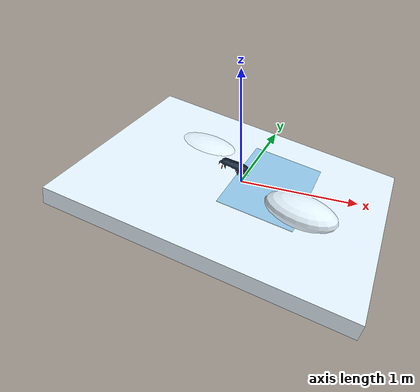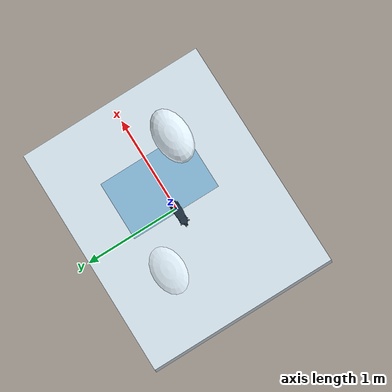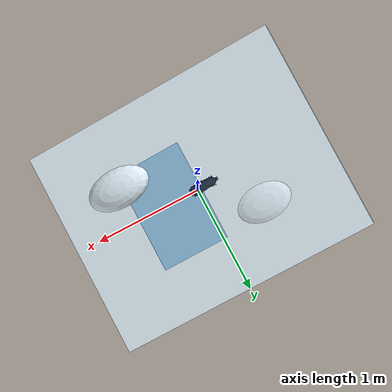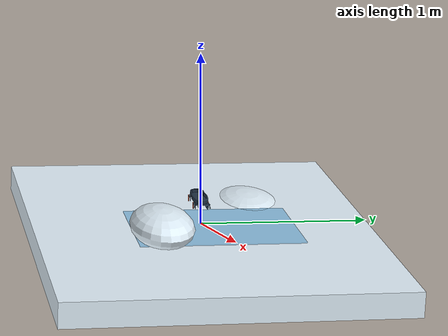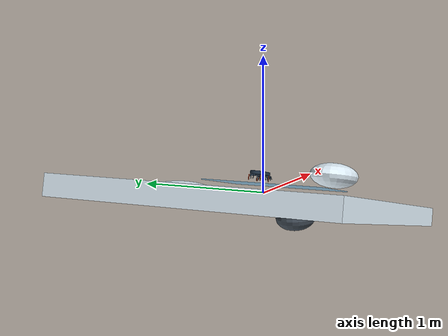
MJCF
<mujoco model="hackathon_everest_snow_slope_viewer">
  <compiler angle="degree" meshdir="../assets/crampon" autolimits="true"/>
  <option timestep="0.00025" gravity="0 0 -9.81"/>
  <visual>
    <headlight diffuse="0.75 0.82 0.92" ambient="0.28 0.30 0.38" specular="0.25 0.25 0.25"/>
    <rgba haze="0.72 0.83 0.94 1"/>
    <global offwidth="1280" offheight="720"/>
  </visual>
  <default>
    <geom friction="0.04 0.003 0.0001"/>
  </default>
  <asset>
    <material name="snow" rgba="0.90 0.96 1.00 1" specular="0.10" shininess="0.15"/>
    <material name="ice" rgba="0.48 0.74 0.91 1" specular="0.65" shininess="0.75"/>
    <material name="crampon_metal" rgba="0.13 0.20 0.27 1" metallic="0.8" roughness="0.25"/>
    <texture name="sky" type="skybox" builtin="gradient" rgb1="0.20 0.38 0.60" rgb2="0.80 0.90 1.0" width="512" height="3072"/>
    <mesh name="crampon_frame_mesh" file="crampon_frame.stl"/>
    <mesh name="mount_plate_mesh" file="mount_plate.stl"/>
  </asset>
  <worldbody>
    <light name="sun" directional="true" pos="-1 -1 2" dir="0.35 0.25 -1" diffuse="1 0.95 0.85"/>
    <light name="fill" pos="0 -1 1.2" diffuse="0.35 0.45 0.62"/>
    <camera name="overview" pos="1.15 -1.35 0.78" xyaxes="0.76 0.65 0 -0.26 0.30 0.92"/>
    <camera name="uphill" pos="-0.75 -1.20 0.46" xyaxes="0.84 -0.52 0.15 0.18 0.54 0.82"/>

    <!-- 12 degree snow slope, with a translucent hard-ice patch. Visual/demo only. -->
    <geom name="snow_slope" type="box" pos="0 0 -0.075" size="1.25 1.00 0.075"
          euler="0 12 0" material="snow"/>
    <geom name="ice_patch" type="box" pos="0.28 0.02 0.010" size="0.32 0.48 0.003"
          euler="0 12 0" material="ice" rgba="0.48 0.74 0.91 0.72"/>
    <geom name="snow_drift_a" type="ellipsoid" pos="-0.48 0.38 0.045" size="0.34 0.22 0.09"
          euler="0 12 0" material="snow"/>
    <geom name="snow_drift_b" type="ellipsoid" pos="0.62 -0.34 0.06" size="0.30 0.18 0.10"
          euler="0 12 0" material="snow"/>
    <geom name="rock_outcrop" type="ellipsoid" pos="-0.68 -0.52 -0.005" size="0.16 0.12 0.08"
          rgba="0.25 0.29 0.33 1"/>

    <body name="crampon_display" pos="-0.08 0 0.145" euler="0 12 0">
      <geom name="crampon_frame" type="mesh" mesh="crampon_frame_mesh" material="crampon_metal"
            contype="0" conaffinity="0"/>
      <geom name="mount_plate" type="mesh" mesh="mount_plate_mesh" material="crampon_metal"
            contype="0" conaffinity="0"/>
      <geom name="spike_front_left" type="capsule" fromto="0.075 0.045 -0.005 0.075 0.045 -0.040"
            size="0.0035" rgba="0.78 0.30 0.16 1"/>
      <geom name="spike_front_right" type="capsule" fromto="0.075 -0.045 -0.005 0.075 -0.045 -0.040"
            size="0.0035" rgba="0.78 0.30 0.16 1"/>
      <geom name="spike_rear_left" type="capsule" fromto="-0.075 0.045 -0.005 -0.075 0.045 -0.040"
            size="0.0035" rgba="0.78 0.30 0.16 1"/>
      <geom name="spike_rear_right" type="capsule" fromto="-0.075 -0.045 -0.005 -0.075 -0.045 -0.040"
            size="0.0035" rgba="0.78 0.30 0.16 1"/>
    </body>
  </worldbody>
</mujoco>
